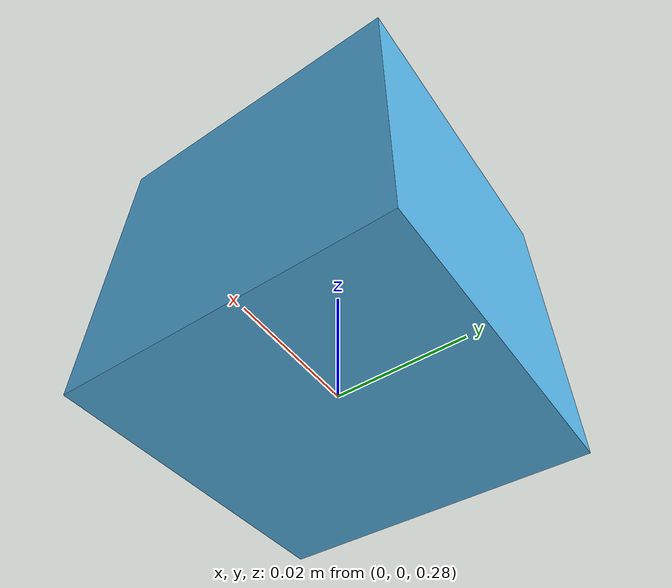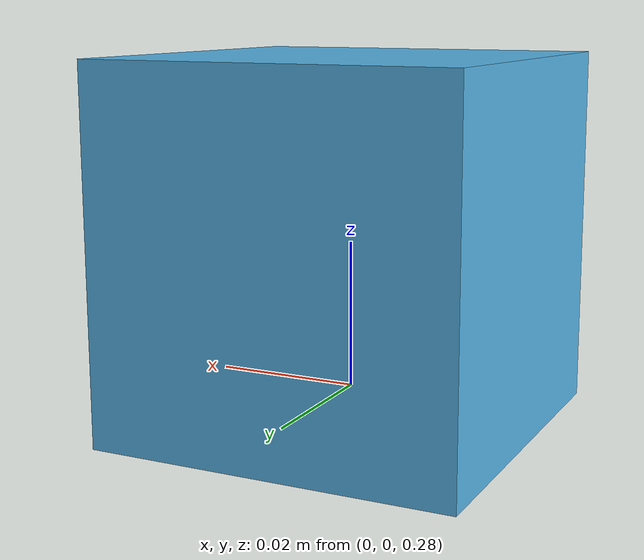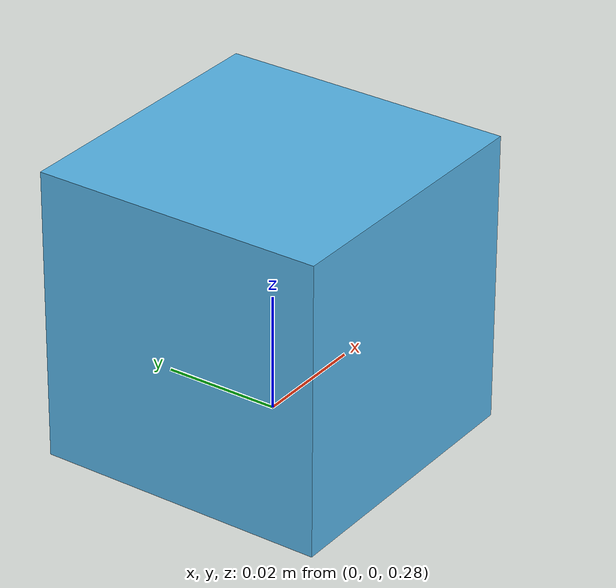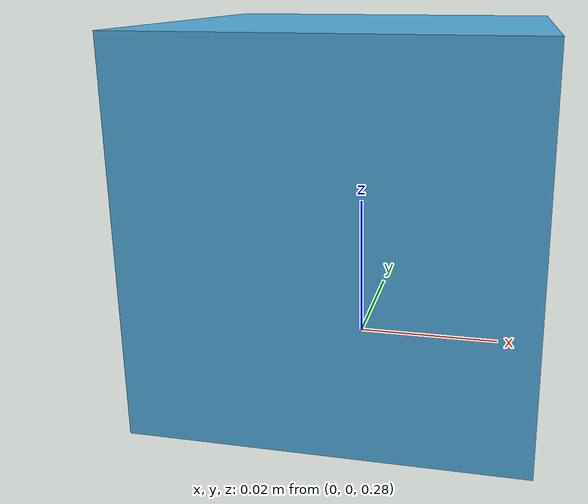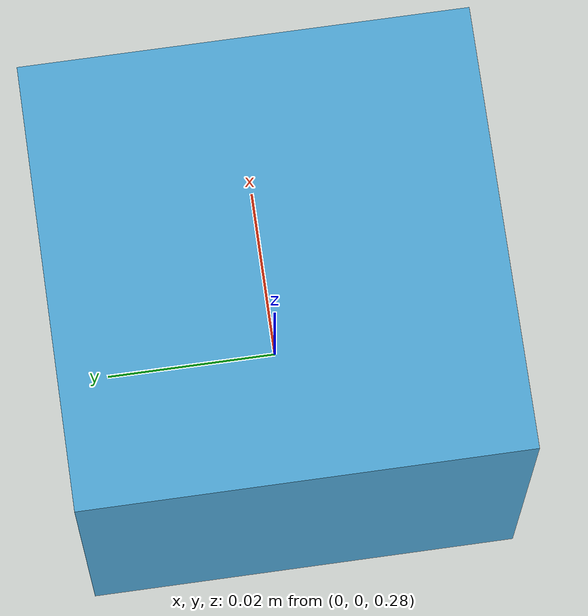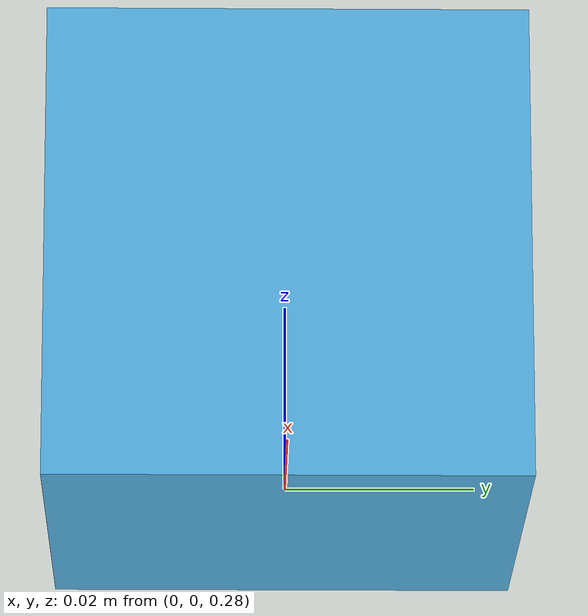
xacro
<?xml version="1.0"?>
<robot xmlns:xacro="http://www.ros.org/wiki/xacro" name="rm_gimbal">

  <!-- 参数 -->
  <xacro:arg name="xyz" default="0.0 0.0 0.0"/>
  <xacro:arg name="rpy" default="0.0 0.0 0.0"/>

  <!-- 里程计坐标系 (世界系) -->
  <link name="odom"/>

  <!-- 云台基座 -->
  <link name="gimbal_base">
    <visual>
      <geometry>
        <box size="0.05 0.05 0.05"/>
      </geometry>
    </visual>
  </link>

  <!-- 相机光学坐标系 -->
  <link name="camera_optical_frame"/>

  <!-- odom -> gimbal_base -->
  <joint name="odom_to_gimbal" type="fixed">
    <parent link="odom"/>
    <child link="gimbal_base"/>
    <origin xyz="0 0 0.3" rpy="0 0 0"/>
  </joint>

  <!-- gimbal_base -> camera_optical_frame -->
  <joint name="gimbal_to_camera" type="fixed">
    <parent link="gimbal_base"/>
    <child link="camera_optical_frame"/>
    <origin xyz="$(arg xyz)" rpy="$(arg rpy)"/>
  </joint>

</robot>
